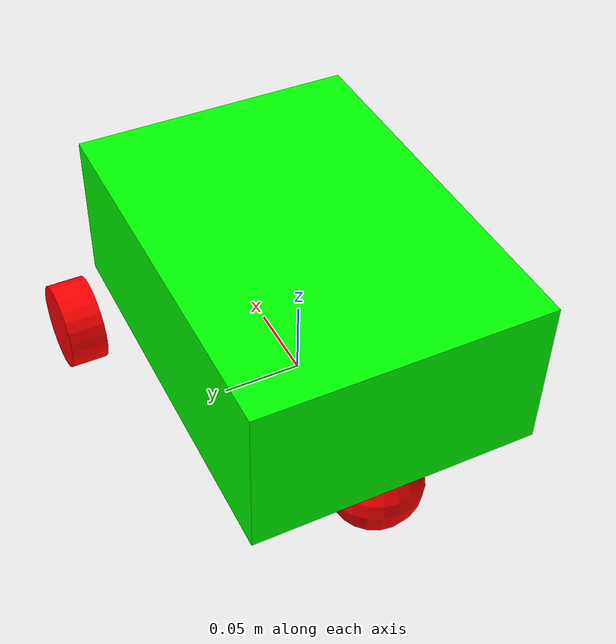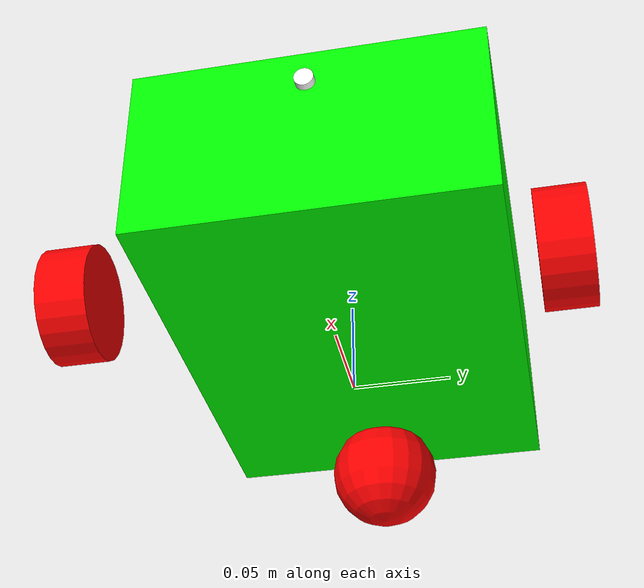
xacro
<?xml version = "1.0"?>
<robot name = "atlas">
    <material name = "blue">
        <color rgba = "0 0 1 1"/>
    </material>

    <material name = "red">
        <color rgba = "1 0 0 1"/>
    </material>

    <material name = "green">
        <color rgba = "0 1 0 1"/>
    </material>

    <material name = "white">
        <color rgba = "1 1 1 1"/>
    </material>

    <link name="base_link">
        <visual>
            <geometry>
                <box size = "0.25 0.18 0.1"/>
            </geometry>
            <origin xyz = "0 0 0.07" rpy="0 0 0"/>
            <material name = "green"/>
        </visual>
    </link>

    <link name="camera">
        <visual>
            <geometry>
                <cylinder radius = "0.005" length = "0.01"/>
            </geometry>
            <origin xyz = "0 0 0" rpy = "0 0 0"/>
            <material name = "white"/>
        </visual>
    </link>

    <link name="Lwheel">
        <visual>
            <geometry>
                <cylinder radius = "0.028" length = "0.024"/>
            </geometry>
            <origin xyz = "0 0 0" rpy = "0 0 0"/>
            <material name = "red"/>
        </visual>
    </link>

    <link name="Rwheel">
        <visual>
            <geometry>
                <cylinder radius = "0.028" length = "0.024"/>
            </geometry>
            <origin xyz = "0 0 0" rpy = "0 0 0"/>
            <material name = "red"/>
        </visual>
    </link>

    <link name="caster">
        <visual>
            <geometry>
                <sphere radius = "0.03" />
            </geometry>
            <origin xyz = "0 0 0" rpy = "0 0 0"/>
            <material name = "red"/>
        </visual>
    </link>

    <joint name = "base_camera_joint" type = "fixed">
        <parent link = "base_link"/>
        <child link = "camera"/>
        <origin xyz = "0.125 0 0.1" rpy = "0 1.7 0"/>
    </joint>

    <joint name = "base_Lwheel_joint" type = "continuous">
        <parent link = "base_link"/>
        <child link = "Lwheel"/>
        <origin xyz = "0.1 -0.114 0" rpy = "1.5708 0 0"/>
        <axis xyz="0 0 -1"/>
    </joint>

    <joint name = "base_Rwheel_joint" type = "continuous">
        <parent link = "base_link"/>
        <child link = "Rwheel"/>
        <origin xyz = "0.1 0.114 0" rpy = "1.5708 0 0"/>
        <axis xyz="0 0 -1"/>
    </joint>

    <joint name = "base_caster_joint" type = "fixed">
        <parent link = "base_link"/>
        <child link = "caster"/>
        <origin xyz = "-0.1 0 0" rpy = "0 0 0"/>
    </joint>
</robot>
